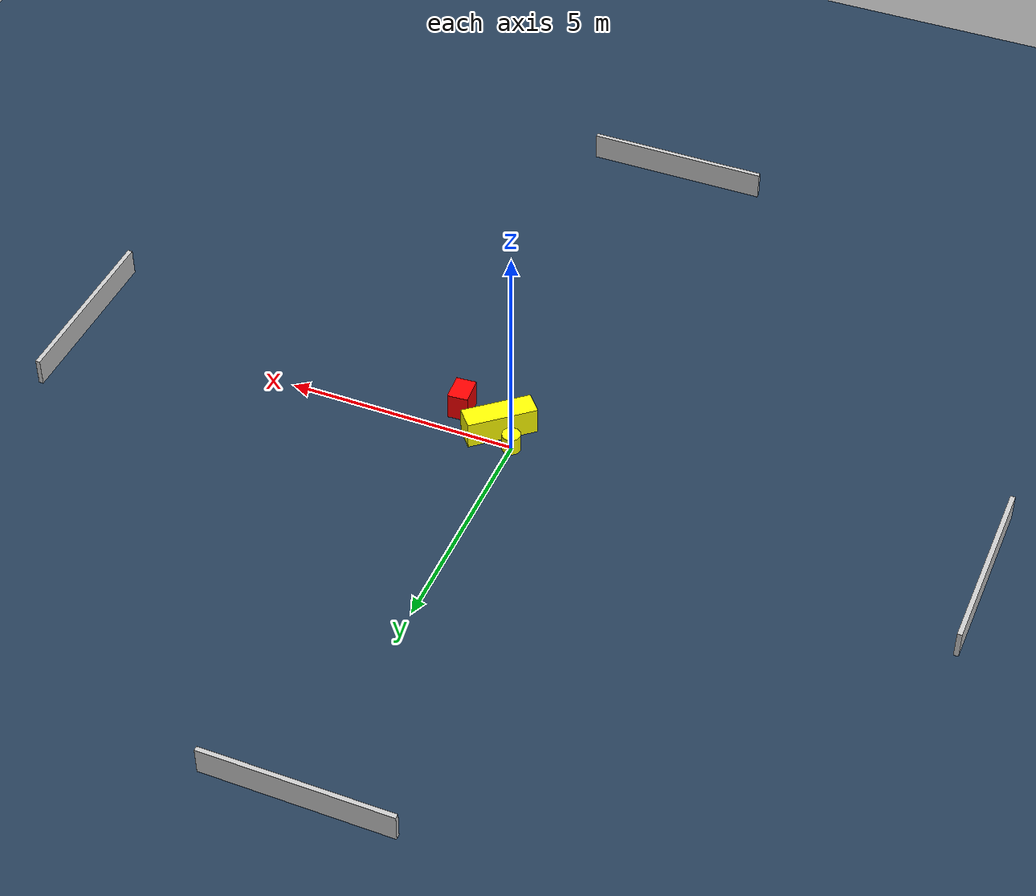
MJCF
<?xml version="1.0" ?>
<mujoco model="generated_environment">
  <option timestep="0.01" integrator="RK4" cone="elliptic"/>
  <default>
    <geom density="1"/>
  </default>
  <asset>
    <texture builtin="gradient" height="3072" name="skybox" rgb1="0.3 0.5 0.7" rgb2="0 0 0" type="skybox" width="512"/>
    <texture builtin="checker" height="300" name="groundplane" rgb1="0.2 0.3 0.4" rgb2="0.1 0.2 0.3" type="2d" width="300"/>
    <material name="groundplane" reflectance="0.2" texrepeat="5 5" texture="groundplane"/>
  </asset>
  <worldbody>
    <light dir="0 0 -1" directional="true" pos="0 0 1.5"/>
    <geom condim="3" friction="0.5 0.005 0.001" material="groundplane" name="floor" pos="0 0 0" size="0 0 0.05" type="plane"/>
    <body name="walls">
      <geom name="wall_1" condim="4" pos="-10.0 0.0 0.3" rgba="0.800000011920929 0.800000011920929 0.800000011920929 1.0" size="0.05 2.0 0.3" type="box"/>
      <geom name="wall_2" condim="4" pos="10.0 0.0 0.3" rgba="0.800000011920929 0.800000011920929 0.800000011920929 1.0" size="0.05 2.0 0.3" type="box"/>
      <geom name="wall_3" condim="4" pos="0.0 -10.0 0.3" rgba="0.800000011920929 0.800000011920929 0.800000011920929 1.0" size="2.0 0.05 0.3" type="box"/>
      <geom name="wall_4" condim="4" pos="0.0 10.0 0.3" rgba="0.800000011920929 0.800000011920929 0.800000011920929 1.0" size="2.0 0.05 0.3" type="box"/>
    </body>
    <body name="robot">
      <joint name="joint_x" type="slide" pos="0 0 0" axis="1 0 0"/>
      <joint name="joint_y" type="slide" pos="0 0 0" axis="0 1 0"/>
      <geom name="robot" type="cylinder" pos="0.0 0.0 0.2" size="0.2 0.2 0.0" mass="5.0" friction="1.0 0.005 0.0001" condim="4" rgba="1.0 1.0 0.0 1.0"/>
    </body>
    <body name="obstacle_1_movable">
      <geom name="obstacle_1_movable" condim="4" pos="0.427501601779372 -0.37356452030924464 0.3" euler="0 0 220.70376198315716" friction="0.0 0.005 0.001" rgba="1.0 1.0 0.0 1.0" size="0.7590061183667662 0.2505394576837887 0.3" type="box" mass="0.1"/>
      <joint type="free"/>
    </body>
    <body name="obstacle_2_static">
      <geom name="obstacle_2_static" condim="4" pos="1.3999929973503604 -0.678117494407868 0.3" euler="0 0 274.1684167202622" friction="0.0 0.005 0.001" rgba="1.0 0.0 0.0 1.0" size="0.2953050156174774 0.22094864936641145 0.3" type="box"/>
    </body>
  </worldbody>
  <actuator>
    <motor name="actuator_x" joint="joint_x" gear="1" ctrlrange="-1 1"/>
    <motor name="actuator_y" joint="joint_y" gear="1" ctrlrange="-1 1"/>
  </actuator>
</mujoco>
